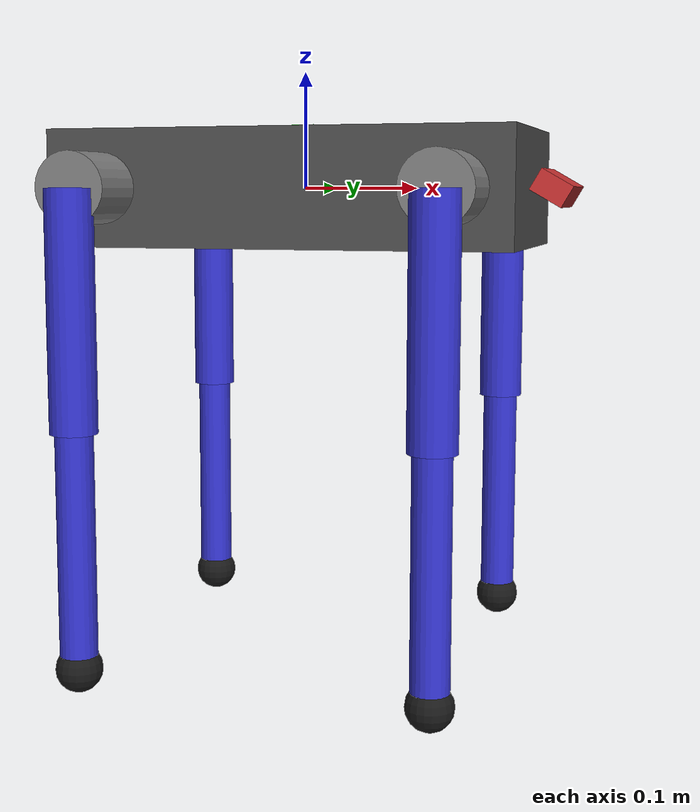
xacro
<?xml version="1.0"?>
<robot name="quadruped" xmlns:xacro="http://www.ros.org/wiki/xacro">

  <!-- Include macros -->
  <xacro:include filename="$(find quadruped_description)/urdf/leg_macro.urdf.xacro"/>

  <!-- Body dimensions -->
  <xacro:property name="body_length" value="0.40"/>
  <xacro:property name="body_width" value="0.20"/>
  <xacro:property name="body_height" value="0.10"/>
  <xacro:property name="body_mass" value="8.0"/>

  <!-- Use simulation? -->
  <xacro:arg name="use_sim" default="false"/>
  <xacro:arg name="use_fake_hardware" default="false"/>
  <xacro:arg name="serial_port" default="/dev/ttyUSB0"/>

  <!-- ==================== BASE LINK ==================== -->

  <link name="base_link">
    <visual>
      <geometry>
        <box size="${body_length} ${body_width} ${body_height}"/>
      </geometry>
      <material name="dark_gray">
        <color rgba="0.3 0.3 0.3 1"/>
      </material>
    </visual>
    <collision>
      <geometry>
        <box size="${body_length} ${body_width} ${body_height}"/>
      </geometry>
    </collision>
    <inertial>
      <mass value="${body_mass}"/>
      <inertia
        ixx="${body_mass/12.0 * (body_width*body_width + body_height*body_height)}"
        ixy="0" ixz="0"
        iyy="${body_mass/12.0 * (body_length*body_length + body_height*body_height)}"
        iyz="0"
        izz="${body_mass/12.0 * (body_length*body_length + body_width*body_width)}"/>
    </inertial>
  </link>

  <!-- ==================== LEGS ==================== -->

  <!-- Front Left (FL) -->
  <xacro:leg prefix="FL" parent="base_link" reflect_x="-1" reflect_y="1"/>

  <!-- Front Right (FR) -->
  <xacro:leg prefix="FR" parent="base_link" reflect_x="1" reflect_y="1"/>

  <!-- Rear Left (RL) -->
  <xacro:leg prefix="RL" parent="base_link" reflect_x="-1" reflect_y="-1"/>

  <!-- Rear Right (RR) -->
  <xacro:leg prefix="RR" parent="base_link" reflect_x="1" reflect_y="-1"/>

  <!-- ==================== IMU ==================== -->

  <joint name="imu_joint" type="fixed">
    <parent link="base_link"/>
    <child link="imu_link"/>
    <origin xyz="0 0 ${body_height/2}" rpy="0 0 0"/>
  </joint>

  <link name="imu_link">
    <visual>
      <geometry>
        <box size="0.02 0.02 0.01"/>
      </geometry>
      <material name="green">
        <color rgba="0.2 0.8 0.2 1"/>
      </material>
    </visual>
    <inertial>
      <mass value="0.01"/>
      <inertia ixx="0.000001" ixy="0" ixz="0" iyy="0.000001" iyz="0" izz="0.000001"/>
    </inertial>
  </link>

  <!-- ==================== RGB-D CAMERA ==================== -->

  <joint name="camera_joint" type="fixed">
    <parent link="base_link"/>
    <child link="camera_link"/>
    <origin xyz="${body_length/2 + 0.02} 0 0" rpy="0 ${pi/6} 0"/>
  </joint>

  <link name="camera_link">
    <visual>
      <geometry>
        <box size="0.03 0.08 0.02"/>
      </geometry>
      <material name="red">
        <color rgba="0.8 0.2 0.2 1"/>
      </material>
    </visual>
    <inertial>
      <mass value="0.05"/>
      <inertia ixx="0.00001" ixy="0" ixz="0" iyy="0.00001" iyz="0" izz="0.00001"/>
    </inertial>
  </link>

  <!-- Camera optical frame (OpenCV convention: Z forward, X right, Y down) -->
  <joint name="camera_optical_joint" type="fixed">
    <parent link="camera_link"/>
    <child link="camera_link_optical"/>
    <origin xyz="0 0 0" rpy="${-pi/2} 0 ${-pi/2}"/>
  </joint>

  <link name="camera_link_optical"/>

  <!-- ==================== ROS2_CONTROL ==================== -->

  <ros2_control name="quadruped_system" type="system">

    <xacro:if value="$(arg use_sim)">
      <hardware>
        <plugin>gz_ros2_control/GazeboSimSystem</plugin>
      </hardware>
    </xacro:if>

    <xacro:unless value="$(arg use_sim)">
      <xacro:if value="$(arg use_fake_hardware)">
        <hardware>
          <plugin>mock_components/GenericSystem</plugin>
          <param name="calculate_dynamics">true</param>
        </hardware>
      </xacro:if>
      <xacro:unless value="$(arg use_fake_hardware)">
        <hardware>
          <plugin>quadruped_hardware/LegHardwareInterface</plugin>
          <param name="serial_port">$(arg serial_port)</param>
          <param name="baud_rate">1000000</param>
        </hardware>
      </xacro:unless>
    </xacro:unless>

    <!-- Front Left Leg -->
    <joint name="FL_HAA">
      <command_interface name="effort">
        <param name="min">-30</param>
        <param name="max">30</param>
      </command_interface>
      <state_interface name="position"/>
      <state_interface name="velocity"/>
      <state_interface name="effort"/>
    </joint>
    <joint name="FL_HFE">
      <command_interface name="effort">
        <param name="min">-30</param>
        <param name="max">30</param>
      </command_interface>
      <state_interface name="position"/>
      <state_interface name="velocity"/>
      <state_interface name="effort"/>
    </joint>
    <joint name="FL_KFE">
      <command_interface name="effort">
        <param name="min">-30</param>
        <param name="max">30</param>
      </command_interface>
      <state_interface name="position"/>
      <state_interface name="velocity"/>
      <state_interface name="effort"/>
    </joint>

    <!-- Front Right Leg -->
    <joint name="FR_HAA">
      <command_interface name="effort">
        <param name="min">-30</param>
        <param name="max">30</param>
      </command_interface>
      <state_interface name="position"/>
      <state_interface name="velocity"/>
      <state_interface name="effort"/>
    </joint>
    <joint name="FR_HFE">
      <command_interface name="effort">
        <param name="min">-30</param>
        <param name="max">30</param>
      </command_interface>
      <state_interface name="position"/>
      <state_interface name="velocity"/>
      <state_interface name="effort"/>
    </joint>
    <joint name="FR_KFE">
      <command_interface name="effort">
        <param name="min">-30</param>
        <param name="max">30</param>
      </command_interface>
      <state_interface name="position"/>
      <state_interface name="velocity"/>
      <state_interface name="effort"/>
    </joint>

    <!-- Rear Left Leg -->
    <joint name="RL_HAA">
      <command_interface name="effort">
        <param name="min">-30</param>
        <param name="max">30</param>
      </command_interface>
      <state_interface name="position"/>
      <state_interface name="velocity"/>
      <state_interface name="effort"/>
    </joint>
    <joint name="RL_HFE">
      <command_interface name="effort">
        <param name="min">-30</param>
        <param name="max">30</param>
      </command_interface>
      <state_interface name="position"/>
      <state_interface name="velocity"/>
      <state_interface name="effort"/>
    </joint>
    <joint name="RL_KFE">
      <command_interface name="effort">
        <param name="min">-30</param>
        <param name="max">30</param>
      </command_interface>
      <state_interface name="position"/>
      <state_interface name="velocity"/>
      <state_interface name="effort"/>
    </joint>

    <!-- Rear Right Leg -->
    <joint name="RR_HAA">
      <command_interface name="effort">
        <param name="min">-30</param>
        <param name="max">30</param>
      </command_interface>
      <state_interface name="position"/>
      <state_interface name="velocity"/>
      <state_interface name="effort"/>
    </joint>
    <joint name="RR_HFE">
      <command_interface name="effort">
        <param name="min">-30</param>
        <param name="max">30</param>
      </command_interface>
      <state_interface name="position"/>
      <state_interface name="velocity"/>
      <state_interface name="effort"/>
    </joint>
    <joint name="RR_KFE">
      <command_interface name="effort">
        <param name="min">-30</param>
        <param name="max">30</param>
      </command_interface>
      <state_interface name="position"/>
      <state_interface name="velocity"/>
      <state_interface name="effort"/>
    </joint>

  </ros2_control>

  <!-- ==================== IMU SENSOR ==================== -->

  <ros2_control name="imu_sensor" type="sensor">
    <xacro:if value="$(arg use_sim)">
      <hardware>
        <plugin>gz_ros2_control/GazeboSimSystem</plugin>
      </hardware>
    </xacro:if>
    <xacro:unless value="$(arg use_sim)">
      <hardware>
        <plugin>quadruped_hardware/IMUHardwareInterface</plugin>
        <param name="frame_id">imu_link</param>
      </hardware>
    </xacro:unless>

    <sensor name="imu_sensor">
      <state_interface name="orientation.x"/>
      <state_interface name="orientation.y"/>
      <state_interface name="orientation.z"/>
      <state_interface name="orientation.w"/>
      <state_interface name="angular_velocity.x"/>
      <state_interface name="angular_velocity.y"/>
      <state_interface name="angular_velocity.z"/>
      <state_interface name="linear_acceleration.x"/>
      <state_interface name="linear_acceleration.y"/>
      <state_interface name="linear_acceleration.z"/>
    </sensor>
  </ros2_control>

</robot>

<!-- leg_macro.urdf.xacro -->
<robot xmlns:xacro="http://www.ros.org/wiki/xacro">

  <xacro:property name="hip_offset" value="0.08"/>
  <xacro:property name="upper_leg_length" value="0.20"/>
  <xacro:property name="lower_leg_length" value="0.20"/>

  <xacro:property name="hip_mass" value="0.5"/>
  <xacro:property name="upper_leg_mass" value="0.5"/>
  <xacro:property name="lower_leg_mass" value="0.3"/>

  <xacro:property name="hip_radius" value="0.03"/>
  <xacro:property name="leg_radius" value="0.02"/>
  <xacro:property name="foot_radius" value="0.02"/>

  <!-- Joint limits -->
  <xacro:property name="haa_limit" value="0.5"/>       <!-- rad (~28 deg) -->
  <xacro:property name="hfe_limit_upper" value="1.57"/> <!-- rad (90 deg) -->
  <xacro:property name="hfe_limit_lower" value="-0.5"/> <!-- rad (-28 deg) -->
  <xacro:property name="kfe_limit_upper" value="2.7"/>  <!-- rad (155 deg) -->
  <xacro:property name="kfe_limit_lower" value="-0.1"/> <!-- rad -->

  <xacro:property name="max_effort" value="30.0"/>     <!-- Nm -->
  <xacro:property name="max_velocity" value="10.0"/>   <!-- rad/s -->

  <xacro:macro name="leg" params="prefix parent reflect_x reflect_y">

    <!-- Hip (HAA) - Abduction/Adduction -->
    <joint name="${prefix}_HAA" type="revolute">
      <parent link="${parent}"/>
      <child link="${prefix}_hip"/>
      <origin xyz="${reflect_y * 0.15} ${reflect_x * 0.08} 0" rpy="0 0 0"/>
      <axis xyz="1 0 0"/>
      <limit lower="${-haa_limit}" upper="${haa_limit}"
             effort="${max_effort}" velocity="${max_velocity}"/>
      <dynamics damping="0.1" friction="0.1"/>
    </joint>

    <link name="${prefix}_hip">
      <visual>
        <origin xyz="0 ${reflect_x * hip_offset/2} 0" rpy="${pi/2} 0 0"/>
        <geometry>
          <cylinder radius="${hip_radius}" length="${hip_offset}"/>
        </geometry>
        <material name="gray">
          <color rgba="0.5 0.5 0.5 1"/>
        </material>
      </visual>
      <collision>
        <origin xyz="0 ${reflect_x * hip_offset/2} 0" rpy="${pi/2} 0 0"/>
        <geometry>
          <cylinder radius="${hip_radius}" length="${hip_offset}"/>
        </geometry>
      </collision>
      <inertial>
        <origin xyz="0 ${reflect_x * hip_offset/2} 0"/>
        <mass value="${hip_mass}"/>
        <inertia ixx="0.001" ixy="0" ixz="0" iyy="0.001" iyz="0" izz="0.001"/>
      </inertial>
    </link>

    <!-- Upper Leg (HFE) - Hip Flexion/Extension -->
    <joint name="${prefix}_HFE" type="revolute">
      <parent link="${prefix}_hip"/>
      <child link="${prefix}_thigh"/>
      <origin xyz="0 ${reflect_x * hip_offset} 0" rpy="0 0 0"/>
      <axis xyz="0 1 0"/>
      <limit lower="${hfe_limit_lower}" upper="${hfe_limit_upper}"
             effort="${max_effort}" velocity="${max_velocity}"/>
      <dynamics damping="0.1" friction="0.1"/>
    </joint>

    <link name="${prefix}_thigh">
      <visual>
        <origin xyz="0 0 ${-upper_leg_length/2}" rpy="0 0 0"/>
        <geometry>
          <cylinder radius="${leg_radius}" length="${upper_leg_length}"/>
        </geometry>
        <material name="blue">
          <color rgba="0.2 0.2 0.8 1"/>
        </material>
      </visual>
      <collision>
        <origin xyz="0 0 ${-upper_leg_length/2}" rpy="0 0 0"/>
        <geometry>
          <cylinder radius="${leg_radius}" length="${upper_leg_length}"/>
        </geometry>
      </collision>
      <inertial>
        <origin xyz="0 0 ${-upper_leg_length/2}"/>
        <mass value="${upper_leg_mass}"/>
        <inertia ixx="0.002" ixy="0" ixz="0" iyy="0.002" iyz="0" izz="0.0005"/>
      </inertial>
    </link>

    <!-- Lower Leg (KFE) - Knee Flexion/Extension -->
    <joint name="${prefix}_KFE" type="revolute">
      <parent link="${prefix}_thigh"/>
      <child link="${prefix}_calf"/>
      <origin xyz="0 0 ${-upper_leg_length}" rpy="0 0 0"/>
      <axis xyz="0 1 0"/>
      <limit lower="${kfe_limit_lower}" upper="${kfe_limit_upper}"
             effort="${max_effort}" velocity="${max_velocity}"/>
      <dynamics damping="0.1" friction="0.1"/>
    </joint>

    <link name="${prefix}_calf">
      <visual>
        <origin xyz="0 0 ${-lower_leg_length/2}" rpy="0 0 0"/>
        <geometry>
          <cylinder radius="${leg_radius * 0.8}" length="${lower_leg_length}"/>
        </geometry>
        <material name="blue"/>
      </visual>
      <collision>
        <origin xyz="0 0 ${-lower_leg_length/2}" rpy="0 0 0"/>
        <geometry>
          <cylinder radius="${leg_radius * 0.8}" length="${lower_leg_length}"/>
        </geometry>
      </collision>
      <inertial>
        <origin xyz="0 0 ${-lower_leg_length/2}"/>
        <mass value="${lower_leg_mass}"/>
        <inertia ixx="0.001" ixy="0" ixz="0" iyy="0.001" iyz="0" izz="0.0002"/>
      </inertial>
    </link>

    <!-- Foot (fixed to calf, contains contact point) -->
    <joint name="${prefix}_foot_joint" type="fixed">
      <parent link="${prefix}_calf"/>
      <child link="${prefix}_foot"/>
      <origin xyz="0 0 ${-lower_leg_length}" rpy="0 0 0"/>
    </joint>

    <link name="${prefix}_foot">
      <visual>
        <geometry>
          <sphere radius="${foot_radius}"/>
        </geometry>
        <material name="black">
          <color rgba="0.1 0.1 0.1 1"/>
        </material>
      </visual>
      <collision>
        <geometry>
          <sphere radius="${foot_radius}"/>
        </geometry>
      </collision>
      <inertial>
        <mass value="0.05"/>
        <inertia ixx="0.00001" ixy="0" ixz="0" iyy="0.00001" iyz="0" izz="0.00001"/>
      </inertial>
    </link>

  </xacro:macro>

</robot>
